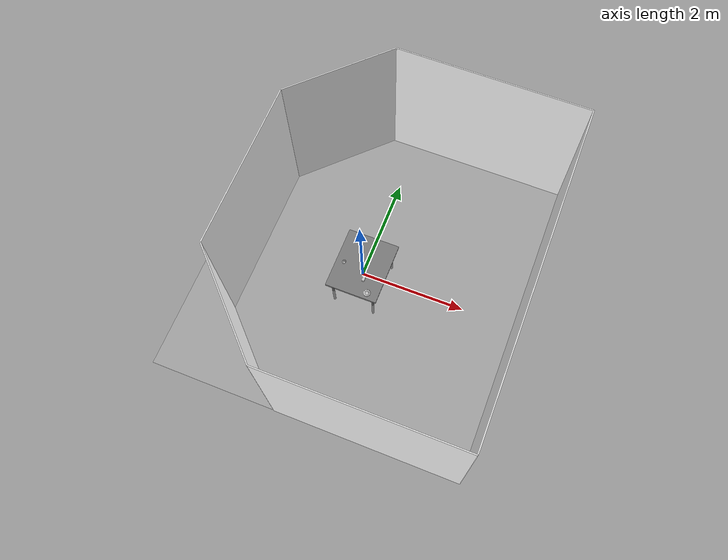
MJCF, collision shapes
<?xml version='1.0' encoding='utf-8'?>
<mujoco model="table_arena">
  <asset>
    <texture builtin="gradient" height="256" rgb1=".9 .9 1." rgb2=".2 .3 .4" type="skybox" width="256" />
    <material name="floorplane_mat" specular="0" shininess="0" reflectance="0.1" rgba="0.8 0.8 0.8 1" />
    <material name="wall_mat" specular="0" shininess="0" reflectance="0" rgba="0.95 0.95 0.95 1" />
    <material name="table_top_mat" specular="0.1" shininess="0.1" reflectance="0.2" rgba="0.7 0.7 0.7 1" />
    <material name="table_leg_mat" specular="0.8" shininess="0.8" reflectance="0.5" rgba="0.4 0.4 0.4 1" />
    <texture file="../libero_assets/stable_scanned_objects/white_bowl/texture.png" name="white_bowl_tex-model" type="2d" />
    <material name="white_bowl_model" reflectance="0.5" texrepeat="1 1" texture="white_bowl_tex-model" texuniform="false" />
    <mesh file="../libero_assets/stable_scanned_objects/white_bowl/visual/model_vis.msh" name="white_bowl_model_vis" scale="0.5 0.5 0.5" />
    <texture file="../libero_assets/stable_scanned_objects/plate/texture.png" name="plate_tex-model" type="2d" />
    <material name="plate_model" reflectance="0.5" texrepeat="1 1" texture="plate_tex-model" texuniform="false" />
    <mesh file="../libero_assets/stable_scanned_objects/plate/visual/model_vis.msh" name="plate_model_vis" scale="0.5 0.5 0.5" />
    <texture file="../libero_assets/stable_hope_objects/ketchup/texture_map.png" name="ketchup_tex-textured" type="2d" />
    <material name="ketchup_textured" reflectance="0.5" texrepeat="1 1" texture="ketchup_tex-textured" texuniform="false" />
    <mesh file="../libero_assets/stable_hope_objects/ketchup/visual/textured_vis.msh" name="ketchup_textured_vis" scale="0.01 0.01 0.01" />
    <texture file="../libero_assets/stable_hope_objects/milk/texture_map.png" name="milk_tex-textured" type="2d" />
    <material name="milk_textured" reflectance="0.5" texrepeat="1 1" texture="milk_tex-textured" texuniform="false" />
    <mesh file="../libero_assets/stable_hope_objects/milk/visual/textured_vis.msh" name="milk_textured_vis" scale="0.0075 0.0075 0.0075" />
  </asset>
  <worldbody>
    <geom condim="3" group="1" material="floorplane_mat" name="floor" pos="0 0 0" size="3 3 .125" type="plane" />
    <geom pos="-1.25 2.25 1.5" quat="0.6532815 0.6532815 0.2705981 0.2705981" size="1.06 1.5 0.01" type="box" conaffinity="0" contype="0" group="1" name="wall_leftcorner_visual" material="wall_mat" />
    <geom pos="-1.25 -2.25 1.5" quat="0.6532815 0.6532815 -0.2705981 -0.2705981" size="1.06 1.5 0.01" type="box" conaffinity="0" contype="0" group="1" name="wall_rightcorner_visual" material="wall_mat" />
    <geom pos="1.25 3 1.5" quat="0.7071 0.7071 0 0" size="1.75 1.5 0.01" type="box" conaffinity="0" contype="0" group="1" name="wall_left_visual" material="wall_mat" />
    <geom pos="1.25 -3 1.5" quat="0.7071 -0.7071 0 0" size="1.75 1.5 0.01" type="box" conaffinity="0" contype="0" group="1" name="wall_right_visual" material="wall_mat" />
    <geom pos="-2 0 1.5" quat="0.5 0.5 0.5 0.5" size="1.5 1.5 0.01" type="box" conaffinity="0" contype="0" group="1" name="wall_rear_visual" material="wall_mat" />
    <geom pos="3 0 1.5" quat="0.5 0.5 -0.5 -0.5" size="3 1.5 0.01" type="box" conaffinity="0" contype="0" group="1" name="wall_front_visual" material="wall_mat" />
    <body name="table" pos="0 0 0.4">
      <geom pos="0 0 0" size="0.5 0.6 0.025" type="box" group="0" name="table_collision" friction="1 0.005 0.0001" />
      <geom name="table_visual" size="0.5 0.6 0.025" type="box" contype="0" conaffinity="0" group="1" material="table_top_mat" />
      <geom name="table_leg1_visual" size="0.025 0.4375" pos="0.4 0.5 -0.4375" type="cylinder" contype="0" conaffinity="0" group="1" material="table_leg_mat" />
      <geom name="table_leg2_visual" size="0.025 0.4375" pos="-0.4 0.5 -0.4375" type="cylinder" contype="0" conaffinity="0" group="1" material="table_leg_mat" />
      <geom name="table_leg3_visual" size="0.025 0.4375" pos="-0.4 -0.5 -0.4375" type="cylinder" contype="0" conaffinity="0" group="1" material="table_leg_mat" />
      <geom name="table_leg4_visual" size="0.025 0.4375" pos="0.4 -0.5 -0.4375" type="cylinder" contype="0" conaffinity="0" group="1" material="table_leg_mat" />
    </body>
    <light pos="1.0 1.0 1.5" dir="-0.2 -0.2 -1" specular="0.3 0.3 0.3" directional="true" castshadow="false" />
    <camera mode="fixed" name="frontview" pos="1.6 0 1.45" quat="0.56 0.43 0.43 0.56" />
    <camera mode="fixed" name="birdview" pos="-0.2 0 3.0" quat="0.7071 0 0 0.7071" />
    <camera mode="fixed" name="agentview" pos="0.5 0 1.35" quat="0.653 0.271 0.271 0.653" />
    <camera mode="fixed" name="sideview" pos="-0.05651774593317116 1.2761224129427358 1.4879572214102434" quat="0.009905065491771751 0.006877963156909582 0.5912228352893879 0.806418094001364" />
    <body name="white_bowl_instance" pos="-0.33598734228542737 -0.07079141788880072 0.44500000000000006">
      <geom solimp="0.998 0.998 0.001" solref="0.001 1" density="100" friction="0.95 0.3 0.1" type="mesh" mesh="white_bowl_model_vis" conaffinity="0" contype="0" group="1" material="white_bowl_model" />
      <geom solimp="0.998 0.998 0.001" solref="0.001 1" density="100" friction="0.95 0.3 0.1" type="box" pos="0.00000 0.00009 0.00240" quat="0.70711 0.00000 0.70711 0.00000" size="0.00184 0.01653 0.01728" group="0" rgba="0.8 0.8 0.8 0.3" />
      <geom solimp="0.998 0.998 0.001" solref="0.001 1" density="100" friction="0.95 0.3 0.1" type="box" pos="-0.00007 0.02401 0.00671" quat="0.60990 -0.35780 -0.35780 -0.60990" size="0.00051 0.00709 0.00848" group="0" rgba="0.8 0.8 0.8 0.3" />
      <geom solimp="0.998 0.998 0.001" solref="0.001 1" density="100" friction="0.95 0.3 0.1" type="box" pos="-0.01049 0.02155 0.00685" quat="0.45959 -0.42672 0.26704 0.73169" size="0.00051 0.00709 0.00848" group="0" rgba="0.8 0.8 0.8 0.3" />
      <geom solimp="0.998 0.998 0.001" solref="0.001 1" density="100" friction="0.95 0.3 0.1" type="box" pos="-0.01860 0.01506 0.00697" quat="0.29172 -0.47299 0.16619 0.81459" size="0.00051 0.00709 0.00848" group="0" rgba="0.8 0.8 0.8 0.3" />
      <geom solimp="0.998 0.998 0.001" solref="0.001 1" density="100" friction="0.95 0.3 0.1" type="box" pos="-0.02323 0.00567 0.00703" quat="0.10855 -0.49698 0.05658 0.85908" size="0.00051 0.00709 0.00848" group="0" rgba="0.8 0.8 0.8 0.3" />
      <geom solimp="0.998 0.998 0.001" solref="0.001 1" density="100" friction="0.95 0.3 0.1" type="box" pos="-0.02348 -0.00453 0.00703" quat="0.49761 -0.07722 0.86246 0.05074" size="0.00051 0.00709 0.00848" group="0" rgba="0.8 0.8 0.8 0.3" />
      <geom solimp="0.998 0.998 0.001" solref="0.001 1" density="100" friction="0.95 0.3 0.1" type="box" pos="-0.01923 -0.01422 0.00703" quat="0.47408 -0.26597 0.82406 0.15949" size="0.00051 0.00709 0.00848" group="0" rgba="0.8 0.8 0.8 0.3" />
      <geom solimp="0.998 0.998 0.001" solref="0.001 1" density="100" friction="0.95 0.3 0.1" type="box" pos="-0.01112 -0.02117 0.00703" quat="0.42646 -0.44336 0.74380 0.26138" size="0.00051 0.00709 0.00848" group="0" rgba="0.8 0.8 0.8 0.3" />
      <geom solimp="0.998 0.998 0.001" solref="0.001 1" density="100" friction="0.95 0.3 0.1" type="box" pos="-0.00087 -0.02390 0.00703" quat="0.59728 0.35787 0.34946 -0.62695" size="0.00051 0.00709 0.00848" group="0" rgba="0.8 0.8 0.8 0.3" />
      <geom solimp="0.998 0.998 0.001" solref="0.001 1" density="100" friction="0.95 0.3 0.1" type="box" pos="0.00965 -0.02188 0.00703" quat="0.72249 0.27055 0.42070 -0.47731" size="0.00051 0.00709 0.00848" group="0" rgba="0.8 0.8 0.8 0.3" />
      <geom solimp="0.998 0.998 0.001" solref="0.001 1" density="100" friction="0.95 0.3 0.1" type="box" pos="0.01802 -0.01572 0.00703" quat="0.17267 -0.80894 0.30891 0.46945" size="0.00051 0.00709 0.00848" group="0" rgba="0.8 0.8 0.8 0.3" />
      <geom solimp="0.998 0.998 0.001" solref="0.001 1" density="100" friction="0.95 0.3 0.1" type="box" pos="0.02302 -0.00650 0.00703" quat="0.85700 0.06550 0.49588 -0.12397" size="0.00051 0.00709 0.00848" group="0" rgba="0.8 0.8 0.8 0.3" />
      <geom solimp="0.998 0.998 0.001" solref="0.001 1" density="100" friction="0.95 0.3 0.1" type="box" pos="0.02302 -0.00650 0.00703" quat="0.85700 0.06550 0.49588 -0.12397" size="0.00051 0.00709 0.00848" group="0" rgba="0.8 0.8 0.8 0.3" />
      <geom solimp="0.998 0.998 0.001" solref="0.001 1" density="100" friction="0.95 0.3 0.1" type="box" pos="0.02391 0.00015 0.00703" quat="0.86591 -0.00473 0.50017 -0.00248" size="0.00051 0.00709 0.00848" group="0" rgba="0.8 0.8 0.8 0.3" />
      <geom solimp="0.998 0.998 0.001" solref="0.001 1" density="100" friction="0.95 0.3 0.1" type="box" pos="0.02169 0.01008 0.00703" quat="0.84663 -0.11101 0.48771 0.18175" size="0.00051 0.00709 0.00848" group="0" rgba="0.8 0.8 0.8 0.3" />
      <geom solimp="0.998 0.998 0.001" solref="0.001 1" density="100" friction="0.95 0.3 0.1" type="box" pos="0.01540 0.01830 0.00703" quat="0.21392 0.78724 0.36065 -0.45213" size="0.00051 0.00709 0.00848" group="0" rgba="0.8 0.8 0.8 0.3" />
      <geom solimp="0.998 0.998 0.001" solref="0.001 1" density="100" friction="0.95 0.3 0.1" type="box" pos="0.00826 0.02244 0.00703" quat="0.71324 -0.28870 0.40847 0.49101" size="0.00051 0.00709 0.00848" group="0" rgba="0.8 0.8 0.8 0.3" />
      <geom solimp="0.998 0.998 0.001" solref="0.001 1" density="100" friction="0.95 0.3 0.1" type="box" pos="-0.00007 0.03575 0.02264" quat="0.10134 0.69981 0.69981 -0.10134" size="0.00096 0.00709 0.01266" group="0" rgba="0.8 0.8 0.8 0.3" />
      <geom solimp="0.998 0.998 0.001" solref="0.001 1" density="100" friction="0.95 0.3 0.1" type="box" pos="-0.01308 0.03327 0.02264" quat="0.55811 -0.11836 0.08082 0.81730" size="0.00096 0.00709 0.01266" group="0" rgba="0.8 0.8 0.8 0.3" />
      <geom solimp="0.998 0.998 0.001" solref="0.001 1" density="100" friction="0.95 0.3 0.1" type="box" pos="-0.02408 0.02642 0.02264" quat="0.13104 0.40078 0.90490 -0.05804" size="0.00096 0.00709 0.01266" group="0" rgba="0.8 0.8 0.8 0.3" />
      <geom solimp="0.998 0.998 0.001" solref="0.001 1" density="100" friction="0.95 0.3 0.1" type="box" pos="-0.03197 0.01599 0.02264" quat="0.13945 0.22841 0.96296 -0.03308" size="0.00096 0.00709 0.01266" group="0" rgba="0.8 0.8 0.8 0.3" />
      <geom solimp="0.998 0.998 0.001" solref="0.001 1" density="100" friction="0.95 0.3 0.1" type="box" pos="-0.03558 0.00349 0.02264" quat="0.04942 -0.14314 0.00715 0.98844" size="0.00096 0.00709 0.01266" group="0" rgba="0.8 0.8 0.8 0.3" />
      <geom solimp="0.998 0.998 0.001" solref="0.001 1" density="100" friction="0.95 0.3 0.1" type="box" pos="-0.03456 -0.00914 0.02264" quat="0.14214 -0.12653 0.98155 0.01832" size="0.00096 0.00709 0.01266" group="0" rgba="0.8 0.8 0.8 0.3" />
      <geom solimp="0.998 0.998 0.001" solref="0.001 1" density="100" friction="0.95 0.3 0.1" type="box" pos="-0.02902 -0.02087 0.02264" quat="0.30259 0.13646 0.04382 -0.94228" size="0.00096 0.00709 0.01266" group="0" rgba="0.8 0.8 0.8 0.3" />
      <geom solimp="0.998 0.998 0.001" solref="0.001 1" density="100" friction="0.95 0.3 0.1" type="box" pos="-0.01954 -0.02993 0.02264" quat="0.12610 -0.47028 0.87081 0.06810" size="0.00096 0.00709 0.01266" group="0" rgba="0.8 0.8 0.8 0.3" />
      <geom solimp="0.998 0.998 0.001" solref="0.001 1" density="100" friction="0.95 0.3 0.1" type="box" pos="-0.00766 -0.03492 0.02264" quat="0.61947 0.11177 0.08971 -0.77183" size="0.00096 0.00709 0.01266" group="0" rgba="0.8 0.8 0.8 0.3" />
      <geom solimp="0.998 0.998 0.001" solref="0.001 1" density="100" friction="0.95 0.3 0.1" type="box" pos="0.00530 -0.03535 0.02264" quat="0.74921 0.09364 0.10849 -0.64664" size="0.00096 0.00709 0.01266" group="0" rgba="0.8 0.8 0.8 0.3" />
      <geom solimp="0.998 0.998 0.001" solref="0.001 1" density="100" friction="0.95 0.3 0.1" type="box" pos="0.01764 -0.03109 0.02264" quat="0.07226 -0.85468 0.49898 0.12377" size="0.00096 0.00709 0.01266" group="0" rgba="0.8 0.8 0.8 0.3" />
      <geom solimp="0.998 0.998 0.001" solref="0.001 1" density="100" friction="0.95 0.3 0.1" type="box" pos="0.02755 -0.02278 0.02264" quat="0.93084 0.04868 0.13480 -0.33615" size="0.00096 0.00709 0.01266" group="0" rgba="0.8 0.8 0.8 0.3" />
      <geom solimp="0.998 0.998 0.001" solref="0.001 1" density="100" friction="0.95 0.3 0.1" type="box" pos="0.03395 -0.01119 0.02264" quat="0.97700 0.02287 0.14148 -0.15791" size="0.00096 0.00709 0.01266" group="0" rgba="0.8 0.8 0.8 0.3" />
      <geom solimp="0.998 0.998 0.001" solref="0.001 1" density="100" friction="0.95 0.3 0.1" type="box" pos="0.03572 0.00140 0.02264" quat="0.00267 0.98951 0.01840 -0.14329" size="0.00096 0.00709 0.01266" group="0" rgba="0.8 0.8 0.8 0.3" />
      <geom solimp="0.998 0.998 0.001" solref="0.001 1" density="100" friction="0.95 0.3 0.1" type="box" pos="0.03572 0.00140 0.02264" quat="0.00267 0.98951 0.01840 -0.14329" size="0.00096 0.00709 0.01266" group="0" rgba="0.8 0.8 0.8 0.3" />
      <geom solimp="0.998 0.998 0.001" solref="0.001 1" density="100" friction="0.95 0.3 0.1" type="box" pos="0.03293 0.01390 0.02264" quat="0.02829 0.97021 0.19533 -0.14050" size="0.00096 0.00709 0.01266" group="0" rgba="0.8 0.8 0.8 0.3" />
      <geom solimp="0.998 0.998 0.001" solref="0.001 1" density="100" friction="0.95 0.3 0.1" type="box" pos="0.02592 0.02462 0.02264" quat="0.13315 0.36606 -0.91949 0.05301" size="0.00096 0.00709 0.01266" group="0" rgba="0.8 0.8 0.8 0.3" />
      <geom solimp="0.998 0.998 0.001" solref="0.001 1" density="100" friction="0.95 0.3 0.1" type="box" pos="0.01569 0.03212 0.02264" quat="0.83995 -0.07579 0.12163 0.52340" size="0.00096 0.00709 0.01266" group="0" rgba="0.8 0.8 0.8 0.3" />
      <geom solimp="0.998 0.998 0.001" solref="0.001 1" density="100" friction="0.95 0.3 0.1" type="box" pos="0.00801 0.03484 0.02264" quat="0.08915 0.77490 0.61562 -0.11222" size="0.00094 0.00337 0.01264" group="0" rgba="0.8 0.8 0.8 0.3" />
    </body>
    <body name="plate_instance" pos="0.2860713767984425 -0.48779080651655926 0.44500000000000006">
      <geom solimp="0.998 0.998 0.001" solref="0.001 1" density="100" friction="0.95 0.3 0.1" type="mesh" mesh="plate_model_vis" conaffinity="0" contype="0" group="1" material="plate_model" />
      <geom solimp="0.998 0.998 0.001" solref="0.001 1" density="100" friction="0.95 0.3 0.1" type="box" pos="0.00000 -0.00000 0.00313" quat="0.49356 0.49356 -0.50636 0.50636" size="0.00222 0.02851 0.03057" group="0" rgba="0.8 0.8 0.8 0.3" />
      <geom solimp="0.998 0.998 0.001" solref="0.001 1" density="100" friction="0.95 0.3 0.1" type="box" pos="-0.00000 0.04828 0.00696" quat="0.70574 0.12139 0.68790 0.11832" size="0.00254 0.01913 0.02851" group="0" rgba="0.8 0.8 0.8 0.3" />
      <geom solimp="0.998 0.998 0.001" solref="0.001 1" density="100" friction="0.95 0.3 0.1" type="box" pos="-0.00000 0.04828 0.00696" quat="0.70574 0.12139 0.68790 0.11832" size="0.00254 0.01913 0.02851" group="0" rgba="0.8 0.8 0.8 0.3" />
      <geom solimp="0.998 0.998 0.001" solref="0.001 1" density="100" friction="0.95 0.3 0.1" type="box" pos="0.03237 0.03583 0.00696" quat="0.70114 0.36036 0.59839 -0.14306" size="0.00254 0.01913 0.02851" group="0" rgba="0.8 0.8 0.8 0.3" />
      <geom solimp="0.998 0.998 0.001" solref="0.001 1" density="100" friction="0.95 0.3 0.1" type="box" pos="0.04818 0.00314 0.00696" quat="0.59590 0.55892 0.41899 -0.39618" size="0.00254 0.01913 0.02851" group="0" rgba="0.8 0.8 0.8 0.3" />
      <geom solimp="0.998 0.998 0.001" solref="0.001 1" density="100" friction="0.95 0.3 0.1" type="box" pos="0.03658 -0.03152 0.00696" quat="0.67591 -0.40164 0.59224 0.17629" size="0.00254 0.01913 0.02851" group="0" rgba="0.8 0.8 0.8 0.3" />
      <geom solimp="0.998 0.998 0.001" solref="0.001 1" density="100" friction="0.95 0.3 0.1" type="box" pos="0.00230 -0.04823 0.00696" quat="0.13507 0.69059 -0.10500 -0.70272" size="0.00254 0.01913 0.02851" group="0" rgba="0.8 0.8 0.8 0.3" />
      <geom solimp="0.998 0.998 0.001" solref="0.001 1" density="100" friction="0.95 0.3 0.1" type="box" pos="-0.03334 -0.03492 0.00696" quat="0.59339 0.15267 0.69911 -0.36855" size="0.00254 0.01913 0.02851" group="0" rgba="0.8 0.8 0.8 0.3" />
      <geom solimp="0.998 0.998 0.001" solref="0.001 1" density="100" friction="0.95 0.3 0.1" type="box" pos="-0.04827 -0.00130 0.00696" quat="0.40827 0.40746 0.58825 -0.56679" size="0.00254 0.01913 0.02851" group="0" rgba="0.8 0.8 0.8 0.3" />
      <geom solimp="0.998 0.998 0.001" solref="0.001 1" density="100" friction="0.95 0.3 0.1" type="box" pos="-0.03442 0.03386 0.00696" quat="0.60516 -0.15392 0.68136 0.38190" size="0.00254 0.01913 0.02851" group="0" rgba="0.8 0.8 0.8 0.3" />
    </body>
    <body name="ketchup_instance" pos="0.020378162458403515 -0.020070078696644678 0.44500000000000006">
      <geom solimp="0.998 0.998 0.001" solref="0.001 1" density="100" friction="0.95 0.3 0.1" type="mesh" mesh="ketchup_textured_vis" conaffinity="0" contype="0" group="1" material="ketchup_textured" />
      <geom solimp="0.998 0.998 0.001" solref="0.001 1" density="100" friction="0.95 0.3 0.1" type="box" pos="0.00045 -0.03935 0.00079" quat="0.50000 0.50000 0.50000 -0.50000" size="0.01695 0.02811 0.03307" group="0" rgba="0.8 0.8 0.8 0.3" />
      <geom solimp="0.998 0.998 0.001" solref="0.001 1" density="100" friction="0.95 0.3 0.1" type="box" pos="0.00045 0.00369 0.00079" quat="0.50000 0.50000 -0.50000 -0.50000" size="0.01126 0.01834 0.02393" group="0" rgba="0.8 0.8 0.8 0.3" />
      <geom solimp="0.998 0.998 0.001" solref="0.001 1" density="100" friction="0.95 0.3 0.1" type="box" pos="0.00045 0.02513 0.00079" quat="0.50000 0.50000 -0.50000 -0.50000" size="0.01126 0.01834 0.01869" group="0" rgba="0.8 0.8 0.8 0.3" />
      <geom solimp="0.998 0.998 0.001" solref="0.001 1" density="100" friction="0.95 0.3 0.1" type="box" pos="0.00045 0.05471 0.00079" quat="0.00000 -0.00000 0.70711 -0.70711" size="0.01032 0.01414 0.01848" group="0" rgba="0.8 0.8 0.8 0.3" />
      <geom solimp="0.998 0.998 0.001" solref="0.001 1" density="100" friction="0.95 0.3 0.1" type="box" pos="0.01368 0.05471 0.00079" quat="0.70711 0.70711 0.00000 -0.00000" size="0.00292 0.00405 0.01848" group="0" rgba="0.8 0.8 0.8 0.3" />
      <geom solimp="0.998 0.998 0.001" solref="0.001 1" density="100" friction="0.95 0.3 0.1" type="box" pos="-0.01322 0.05471 0.00079" quat="0.00000 0.00000 0.70711 0.70711" size="0.00315 0.00460 0.01848" group="0" rgba="0.8 0.8 0.8 0.3" />
      <geom solimp="0.998 0.998 0.001" solref="0.001 1" density="100" friction="0.95 0.3 0.1" type="box" pos="0.00008 0.05471 -0.01554" quat="0.50000 -0.50000 0.50000 0.50000" size="0.00209 0.00685 0.01848" group="0" rgba="0.8 0.8 0.8 0.3" />
      <geom solimp="0.998 0.998 0.001" solref="0.001 1" density="100" friction="0.95 0.3 0.1" type="box" pos="0.00002 0.05471 0.01682" quat="0.50000 -0.50000 0.50000 0.50000" size="0.00186 0.00740 0.01848" group="0" rgba="0.8 0.8 0.8 0.3" />
      <geom solimp="0.998 0.998 0.001" solref="0.001 1" density="100" friction="0.95 0.3 0.1" type="box" pos="0.01333 0.05471 0.00901" quat="0.70711 0.70711 0.00000 -0.00000" size="0.00259 0.00413 0.01848" group="0" rgba="0.8 0.8 0.8 0.3" />
      <geom solimp="0.998 0.998 0.001" solref="0.001 1" density="100" friction="0.95 0.3 0.1" type="box" pos="0.01333 0.05471 -0.00727" quat="0.00000 0.00000 0.70711 0.70711" size="0.00259 0.00392 0.01848" group="0" rgba="0.8 0.8 0.8 0.3" />
      <geom solimp="0.998 0.998 0.001" solref="0.001 1" density="100" friction="0.95 0.3 0.1" type="box" pos="-0.01254 0.05471 -0.00799" quat="0.00000 0.00000 0.70711 0.70711" size="0.00259 0.00405 0.01848" group="0" rgba="0.8 0.8 0.8 0.3" />
      <geom solimp="0.998 0.998 0.001" solref="0.001 1" density="100" friction="0.95 0.3 0.1" type="box" pos="-0.01259 0.05471 0.00929" quat="0.00000 0.00000 0.70711 0.70711" size="0.00259 0.00380 0.01848" group="0" rgba="0.8 0.8 0.8 0.3" />
    </body>
    <body name="milk_instance" pos="0.1260401174012109 -0.22696821894114694 0.44500000000000006">
      <geom solimp="0.998 0.998 0.001" solref="0.001 1" density="100" friction="0.95 0.3 0.1" type="mesh" mesh="milk_textured_vis" conaffinity="0" contype="0" group="1" material="milk_textured" />
      <geom solimp="0.998 0.998 0.001" solref="0.001 1" density="100" friction="0.95 0.3 0.1" type="box" pos="0.00037 -0.01500 0.00000" quat="0.70711 0.70711 0.00000 -0.00000" size="0.02625 0.02625 0.05475" group="0" rgba="0.8 0.8 0.8 0.3" />
      <geom solimp="0.998 0.998 0.001" solref="0.001 1" density="100" friction="0.95 0.3 0.1" type="box" pos="0.00005 0.04784 0.01352" quat="0.28687 0.64630 -0.28687 -0.64630" size="0.00218 0.01381 0.02631" group="0" rgba="0.8 0.8 0.8 0.3" />
      <geom solimp="0.998 0.998 0.001" solref="0.001 1" density="100" friction="0.95 0.3 0.1" type="box" pos="0.00005 0.04784 -0.01344" quat="0.64203 0.29630 0.64203 0.29630" size="0.00218 0.01381 0.02631" group="0" rgba="0.8 0.8 0.8 0.3" />
      <geom solimp="0.998 0.998 0.001" solref="0.001 1" density="100" friction="0.95 0.3 0.1" type="box" pos="0.00005 0.05849 0.00005" quat="0.50000 0.50000 -0.50000 -0.50000" size="0.00295 0.00348 0.02650" group="0" rgba="0.8 0.8 0.8 0.3" />
    </body>
  </worldbody>
</mujoco>
